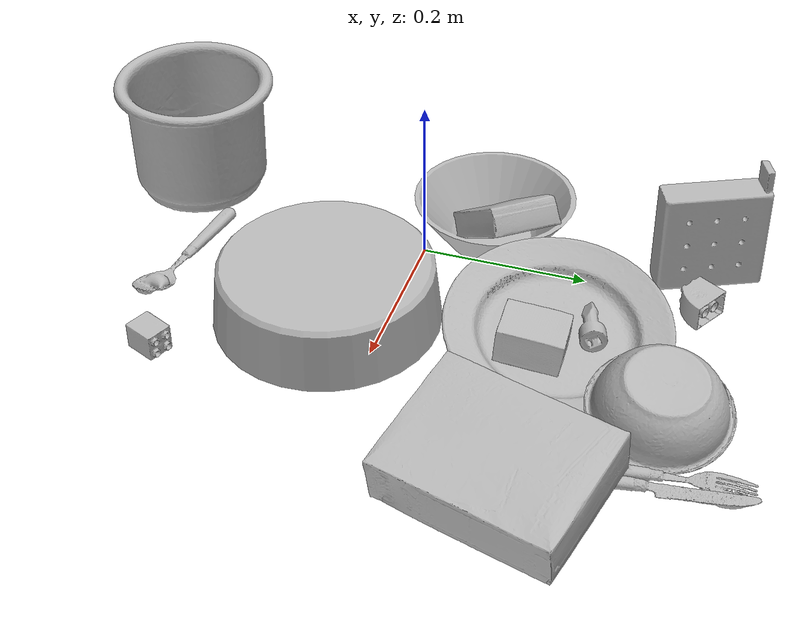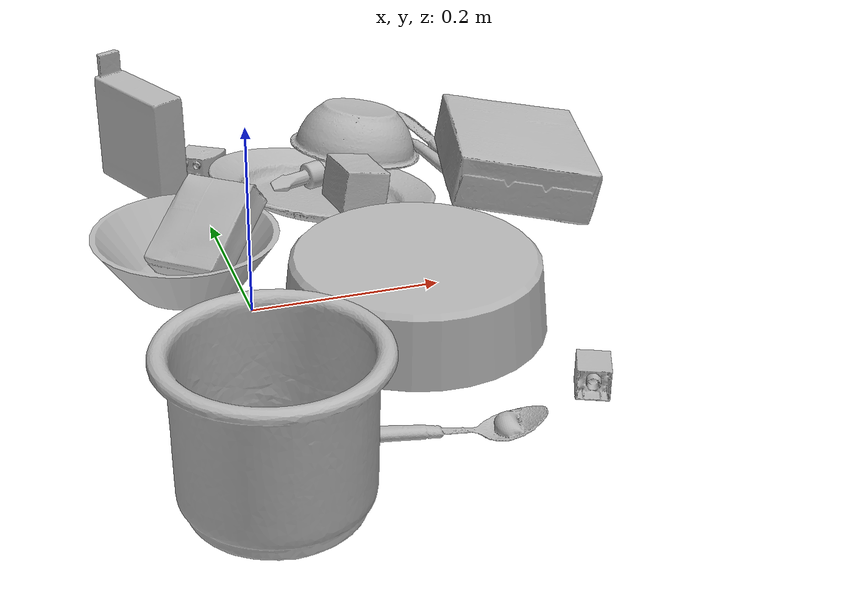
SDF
<sdf version="1.4">
  <world name="default">
    <light name="light1" type="point">
      <pose>0 0 1 0 0 0</pose>
      <diffuse>3 3 3 1</diffuse>
      <specular>3 3 3 1</specular>
    </light>
    <light name="light2" type="point">
      <pose>0 0.5 2 0 0 0</pose>
      <diffuse>1 1 1 1</diffuse>
      <specular>1 1 1 1</specular>
    </light>
    <light name="light3" type="point">
      <pose>0 0.5 2 0 0 0</pose>
      <diffuse>3 3 3 1</diffuse>
      <specular>3 3 3 1</specular>
    </light>
    <scene>
      <ambient>0.7 0.7 0.7</ambient>
    </scene>
    <model name="plate1">
      <link name="link_plate1">
        <collision name="default">
          <geometry>
            <mesh>
              <uri>model://pan_tefal/collision_meshes/collision.obj</uri>
              <scale>1.0 1.0 1.0</scale>
            </mesh>
          </geometry>
          <surface>
            <friction>
              <ode>
                <mu>0.5</mu>
                <mu2>0.5</mu2>
              </ode>
            </friction>
          <contact>
        <ode>
            <max_vel>0</max_vel>
            <min_depth>0.0001</min_depth>
            <kp>1e8</kp>
        </ode>
    </contact></surface>
        </collision>
        <visual name="default">
          <geometry>
            <mesh>
              <uri>model://pan_tefal/visual_meshes/visual.dae</uri>
              <scale>1.0 1.0 1.0</scale>
            </mesh>
          </geometry>
        </visual>
        <inertial>
          <mass>0.7050602436065674</mass>
          <pose>-0.00018002082651946694 3.279098018538207e-05 -0.008514933288097382 0.0008190340203057913 -0.0003301288692481796 -0.3318720847028622</pose>
          <inertia>
            <ixx>0.0048669963</ixx>
            <iyy>0.0048983735</iyy>
            <izz>0.008959204</izz>
            <ixy>0</ixy>
            <ixz>0</ixz>
            <iyz>0</iyz>
          </inertia>
        </inertial>
      </link>
      <pose>0.1508023589849472 -0.06905956566333771 0.03782205283641815 3.1415926468306776 8.100537303439088e-09 1.0113566503248026</pose>
    </model>
    <model name="plate2">
      <link name="link_plate2">
        <collision name="default">
          <geometry>
            <mesh>
              <uri>model://plate/collision_meshes/collision.obj</uri>
              <scale>1.0 1.0 1.0</scale>
            </mesh>
          </geometry>
          <surface>
            <friction>
              <ode>
                <mu>0.5</mu>
                <mu2>0.5</mu2>
              </ode>
            </friction>
          <contact>
        <ode>
            <max_vel>0</max_vel>
            <min_depth>0.0001</min_depth>
            <kp>1e8</kp>
        </ode>
    </contact></surface>
        </collision>
        <visual name="default">
          <geometry>
            <mesh>
              <uri>model://plate/visual_meshes/visual.dae</uri>
              <scale>1.0 1.0 1.0</scale>
            </mesh>
          </geometry>
        </visual>
        <inertial>
          <mass>0.2442774623632431</mass>
          <pose>-0.0006044568726792932 0.0002782584633678198 -0.0010561984963715076 0.0022187778178748897 -0.0032254919076997847 0.45261061169843664</pose>
          <inertia>
            <ixx>0.0011427345</ixx>
            <iyy>0.001131805</iyy>
            <izz>0.002235018</izz>
            <ixy>0</ixy>
            <ixz>0</ixz>
            <iyz>0</iyz>
          </inertia>
        </inertial>
      </link>
      <pose>0.12987135350704193 0.19729261100292206 0.028593316674232483 0.1917763437130049 -0.00380566576107094 2.1307648126955523</pose>
    </model>
    <model name="bowl1">
      <link name="link_bowl1">
        <collision name="default">
          <geometry>
            <mesh>
              <uri>model://bowl_a/collision_meshes/collision.obj</uri>
              <scale>1.0 1.0 1.0</scale>
            </mesh>
          </geometry>
          <surface>
            <friction>
              <ode>
                <mu>0.5</mu>
                <mu2>0.5</mu2>
              </ode>
            </friction>
          <contact>
        <ode>
            <max_vel>0</max_vel>
            <min_depth>0.0001</min_depth>
            <kp>1e8</kp>
        </ode>
    </contact></surface>
        </collision>
        <visual name="default">
          <geometry>
            <mesh>
              <uri>model://bowl_a/visual_meshes/visual.dae</uri>
              <scale>1.0 1.0 1.0</scale>
            </mesh>
          </geometry>
        </visual>
        <inertial>
          <mass>0.4025156497955322</mass>
          <pose>0.00027867371682077646 4.731032458948903e-05 -0.0013765298062935472 -0.00098054011869292 -0.0010938175729232503 -0.19123339485915475</pose>
          <inertia>
            <ixx>0.0011459808</ixx>
            <iyy>0.0011530165</iyy>
            <izz>0.0020381706</izz>
            <ixy>0</ixy>
            <ixz>0</ixz>
            <iyz>0</iyz>
          </inertia>
        </inertial>
      </link>
      <pose>-0.05177561193704605 0.07293708622455597 0.03038310632109642 -3.939379057623907e-06 1.4351576092618536e-05 0.8004196292750932</pose>
    </model>
    <model name="bowl2">
      <link name="link_bowl2">
        <collision name="default">
          <geometry>
            <mesh>
              <uri>model://bowl/collision_meshes/collision.obj</uri>
              <scale>1.0 1.0 1.0</scale>
            </mesh>
          </geometry>
          <surface>
            <friction>
              <ode>
                <mu>0.5</mu>
                <mu2>0.5</mu2>
              </ode>
            </friction>
          <contact>
        <ode>
            <max_vel>0</max_vel>
            <min_depth>0.0001</min_depth>
            <kp>1e8</kp>
        </ode>
    </contact></surface>
        </collision>
        <visual name="default">
          <geometry>
            <mesh>
              <uri>model://bowl/visual_meshes/visual.dae</uri>
              <scale>1.0 1.0 1.0</scale>
            </mesh>
          </geometry>
        </visual>
        <inertial>
          <mass>0.04694162309169769</mass>
          <pose>0.00020445318659767509 -0.001030211104080081 -0.0008042642730288208 -0.01576400215318024 0.014546874726031786 0.7140460761636136</pose>
          <inertia>
            <ixx>0.0001078286</ixx>
            <iyy>0.000105419305</iyy>
            <izz>0.00018140484</izz>
            <ixy>0</ixy>
            <ixz>0</ixz>
            <iyz>0</iyz>
          </inertia>
        </inertial>
      </link>
      <pose>0.21385931968688965 0.3307722508907318 0.04167322814464569 -3.025566217668234 -0.1596007666304684 2.9959599246990027</pose>
    </model>
    <model name="silverware1">
      <link name="link_silverware1">
        <collision name="default">
          <geometry>
            <mesh>
              <uri>model://spoon/collision_meshes/collision.obj</uri>
              <scale>1.0 1.0 1.0</scale>
            </mesh>
          </geometry>
          <surface>
            <friction>
              <ode>
                <mu>0.5</mu>
                <mu2>0.5</mu2>
              </ode>
            </friction>
          <contact>
        <ode>
            <max_vel>0</max_vel>
            <min_depth>0.0001</min_depth>
            <kp>1e8</kp>
        </ode>
    </contact></surface>
        </collision>
        <visual name="default">
          <geometry>
            <mesh>
              <uri>model://spoon/visual_meshes/visual.dae</uri>
              <scale>1.0 1.0 1.0</scale>
            </mesh>
          </geometry>
        </visual>
        <inertial>
          <mass>0.03710600733757019</mass>
          <pose>-0.005526318680495024 -0.0016034168656915426 -0.0007271650829352438 0.03521602429168162 -0.03906583039209626 0.006150612964611125</pose>
          <inertia>
            <ixx>2.0638956e-06</ixx>
            <iyy>0.00014118708</iyy>
            <izz>0.00014220492</izz>
            <ixy>0</ixy>
            <ixz>0</ixz>
            <iyz>0</iyz>
          </inertia>
        </inertial>
      </link>
      <pose>0.10520392656326294 -0.26743000745773315 0.008385268040001392 0.006729665319695716 0.02689295323844102 -0.1815860819226589</pose>
    </model>
    <model name="box1">
      <link name="link_box1">
        <collision name="default">
          <geometry>
            <mesh>
              <uri>model://cracker_box/collision_meshes/collision.obj</uri>
              <scale>1.0 1.0 1.0</scale>
            </mesh>
          </geometry>
          <surface>
            <friction>
              <ode>
                <mu>0.5</mu>
                <mu2>0.5</mu2>
              </ode>
            </friction>
          <contact>
        <ode>
            <max_vel>0</max_vel>
            <min_depth>0.0001</min_depth>
            <kp>1e8</kp>
        </ode>
    </contact></surface>
        </collision>
        <visual name="default">
          <geometry>
            <mesh>
              <uri>model://cracker_box/visual_meshes/visual.dae</uri>
              <scale>1.0 1.0 1.0</scale>
            </mesh>
          </geometry>
        </visual>
        <inertial>
          <mass>2.252173662185669</mass>
          <pose>0.0009464137838222086 0.0002543425071053207 -0.0017029535956680775 -0.000316207513865998 -0.011106489600465836 0.0025467954670329632</pose>
          <inertia>
            <ixx>0.0057285246</ixx>
            <iyy>0.00945892</iyy>
            <izz>0.013498746</izz>
            <ixy>0</ixy>
            <ixz>0</ixz>
            <iyz>0</iyz>
          </inertia>
        </inertial>
      </link>
      <pose>0.3637746274471283 0.1936500370502472 0.041548918932676315 -2.978513403110778 0.021025376910134386 1.3208669745567758</pose>
    </model>
    <model name="box2">
      <link name="link_box2">
        <collision name="default">
          <geometry>
            <mesh>
              <uri>model://pudding_box/collision_meshes/collision.obj</uri>
              <scale>1.0 1.0 1.0</scale>
            </mesh>
          </geometry>
          <surface>
            <friction>
              <ode>
                <mu>0.5</mu>
                <mu2>0.5</mu2>
              </ode>
            </friction>
          <contact>
        <ode>
            <max_vel>0</max_vel>
            <min_depth>0.0001</min_depth>
            <kp>1e8</kp>
        </ode>
    </contact></surface>
        </collision>
        <visual name="default">
          <geometry>
            <mesh>
              <uri>model://pudding_box/visual_meshes/visual.dae</uri>
              <scale>1.0 1.0 1.0</scale>
            </mesh>
          </geometry>
        </visual>
        <inertial>
          <mass>0.38795164227485657</mass>
          <pose>0.0004894821904599667 0.0008067885646596551 -0.0005188827635720372 0.005213102258195884 -0.006603798723254801 0.020079825158131615</pose>
          <inertia>
            <ixx>0.00043855933</ixx>
            <iyy>0.00029506587</iyy>
            <izz>0.0006476475</izz>
            <ixy>0</ixy>
            <ixz>0</ixz>
            <iyz>0</iyz>
          </inertia>
        </inertial>
      </link>
      <pose>-0.026041928678750992 0.09358558803796768 0.051158539950847626 2.528511380276714 0.05940681070833325 2.322940660297445</pose>
    </model>
    <model name="cup1">
      <link name="link_cup1">
        <collision name="default">
          <geometry>
            <mesh>
              <uri>model://i_cups/collision_meshes/collision.obj</uri>
              <scale>2.0 2.0 2.0</scale>
            </mesh>
          </geometry>
          <surface>
            <friction>
              <ode>
                <mu>0.5</mu>
                <mu2>0.5</mu2>
              </ode>
            </friction>
          <contact>
        <ode>
            <max_vel>0</max_vel>
            <min_depth>0.0001</min_depth>
            <kp>1e8</kp>
        </ode>
    </contact></surface>
        </collision>
        <visual name="default">
          <geometry>
            <mesh>
              <uri>model://i_cups/visual_meshes/visual.dae</uri>
              <scale>2.0 2.0 2.0</scale>
            </mesh>
          </geometry>
        </visual>
        <inertial>
          <mass>0.8781275153160095</mass>
          <pose>0.00022480404004454613 0.0003359464171808213 -0.0017158013070002198 -0.028983801808433914 -0.03987279960401974 -0.34589629987983705</pose>
          <inertia>
            <ixx>0.004863122</ixx>
            <iyy>0.004905971</iyy>
            <izz>0.005435325</izz>
            <ixy>0</ixy>
            <ixz>0</ixz>
            <iyz>0</iyz>
          </inertia>
        </inertial>
      </link>
      <pose>-0.05526040866971016 -0.32053709030151367 0.07554963231086731 0.0019152564417661093 -0.006371255986116936 -1.5711244607384023</pose>
    </model>
    <model name="silverware2">
      <link name="link_silverware2">
        <collision name="default">
          <geometry>
            <mesh>
              <uri>model://fork/collision_meshes/collision.obj</uri>
              <scale>1.0 1.0 1.0</scale>
            </mesh>
          </geometry>
          <surface>
            <friction>
              <ode>
                <mu>0.5</mu>
                <mu2>0.5</mu2>
              </ode>
            </friction>
          <contact>
        <ode>
            <max_vel>0</max_vel>
            <min_depth>0.0001</min_depth>
            <kp>1e8</kp>
        </ode>
    </contact></surface>
        </collision>
        <visual name="default">
          <geometry>
            <mesh>
              <uri>model://fork/visual_meshes/visual.dae</uri>
              <scale>1.0 1.0 1.0</scale>
            </mesh>
          </geometry>
        </visual>
        <inertial>
          <mass>0.027322283014655113</mass>
          <pose>-0.02957003377377987 0.0004658822435885668 0.0003218860656488687 -0.013551502868568713 -0.01097783467120204 0.01445389601768567</pose>
          <inertia>
            <ixx>9.578007e-07</ixx>
            <iyy>7.133063e-05</iyy>
            <izz>7.175903e-05</izz>
            <ixy>0</ixy>
            <ixz>0</ixz>
            <iyz>0</iyz>
          </inertia>
        </inertial>
      </link>
      <pose>0.29389944672584534 0.3462623357772827 0.007455532439053059 -3.0663705828478935 0.002675590170963664 1.7032783077693245</pose>
    </model>
    <model name="silverware3">
      <link name="link_silverware3">
        <collision name="default">
          <geometry>
            <mesh>
              <uri>model://knife/collision_meshes/collision.obj</uri>
              <scale>1.0 1.0 1.0</scale>
            </mesh>
          </geometry>
          <surface>
            <friction>
              <ode>
                <mu>0.5</mu>
                <mu2>0.5</mu2>
              </ode>
            </friction>
          <contact>
        <ode>
            <max_vel>0</max_vel>
            <min_depth>0.0001</min_depth>
            <kp>1e8</kp>
        </ode>
    </contact></surface>
        </collision>
        <visual name="default">
          <geometry>
            <mesh>
              <uri>model://knife/visual_meshes/visual.dae</uri>
              <scale>1.0 1.0 1.0</scale>
            </mesh>
          </geometry>
        </visual>
        <inertial>
          <mass>0.036400385200977325</mass>
          <pose>-0.02378525584936142 0.0015275126788765192 5.0620175898075104e-05 0.07305876248658423 0.017248417790611748 -0.007409819472147862</pose>
          <inertia>
            <ixx>1.0331904e-06</ixx>
            <iyy>0.00013984439</iyy>
            <izz>0.00014017712</izz>
            <ixy>0</ixy>
            <ixz>0</ixz>
            <iyz>0</iyz>
          </inertia>
        </inertial>
      </link>
      <pose>0.3155743479728699 0.3428523540496826 0.007876850664615631 -0.004773618330488124 -0.013398307663119946 1.685290838965301</pose>
    </model>
    <model name="toy1">
      <link name="link_toy1">
        <collision name="default">
          <geometry>
            <mesh>
              <uri>model://d_lego_duplo/collision_meshes/collision.obj</uri>
              <scale>1.0 1.0 1.0</scale>
            </mesh>
          </geometry>
          <surface>
            <friction>
              <ode>
                <mu>0.5</mu>
                <mu2>0.5</mu2>
              </ode>
            </friction>
          <contact>
        <ode>
            <max_vel>0</max_vel>
            <min_depth>0.0001</min_depth>
            <kp>1e8</kp>
        </ode>
    </contact></surface>
        </collision>
        <visual name="default">
          <geometry>
            <mesh>
              <uri>model://d_lego_duplo/visual_meshes/visual.dae</uri>
              <scale>1.0 1.0 1.0</scale>
            </mesh>
          </geometry>
        </visual>
        <inertial>
          <mass>0.060466669499874115</mass>
          <pose>0.002830563113093376 0.00016366162162739784 0.0008589806384406984 0.08010949306805684 -0.3835523000845375 0.0010296676643477064</pose>
          <inertia>
            <ixx>1.1705457e-05</ixx>
            <iyy>1.6613216e-05</iyy>
            <izz>1.6021117e-05</izz>
            <ixy>0</ixy>
            <ixz>0</ixz>
            <iyz>0</iyz>
          </inertia>
        </inertial>
      </link>
      <pose>0.018273290246725082 0.3352543115615845 0.016380678862333298 -1.5707402317134354 -0.007988450051793716 2.6115262183990033</pose>
    </model>
    <model name="toy2">
      <link name="link_toy2">
        <collision name="default">
          <geometry>
            <mesh>
              <uri>model://b_lego_duplo/collision_meshes/collision.obj</uri>
              <scale>1.0 1.0 1.0</scale>
            </mesh>
          </geometry>
          <surface>
            <friction>
              <ode>
                <mu>0.5</mu>
                <mu2>0.5</mu2>
              </ode>
            </friction>
          <contact>
        <ode>
            <max_vel>0</max_vel>
            <min_depth>0.0001</min_depth>
            <kp>1e8</kp>
        </ode>
    </contact></surface>
        </collision>
        <visual name="default">
          <geometry>
            <mesh>
              <uri>model://b_lego_duplo/visual_meshes/visual.dae</uri>
              <scale>1.0 1.0 1.0</scale>
            </mesh>
          </geometry>
        </visual>
        <inertial>
          <mass>0.030077241361141205</mass>
          <pose>-0.00011053079651901498 -9.15232340048533e-06 0.0019294286612421274 -0.037494862621914114 -0.026354003688684128 0.4518993950044185</pose>
          <inertia>
            <ixx>6.155532e-06</ixx>
            <iyy>6.196912e-06</iyy>
            <izz>5.4843786e-06</izz>
            <ixy>0</ixy>
            <ixz>0</ixz>
            <iyz>0</iyz>
          </inertia>
        </inertial>
      </link>
      <pose>0.26704442501068115 -0.23701682686805725 0.01621655561029911 -1.5802375860357678 0.0003215860703281664 -0.4061056680981358</pose>
    </model>
    <model name="toy3">
      <link name="link_toy3">
        <collision name="default">
          <geometry>
            <mesh>
              <uri>model://nine_hole_peg_test/collision_meshes/collision.obj</uri>
              <scale>1.0 1.0 1.0</scale>
            </mesh>
          </geometry>
          <surface>
            <friction>
              <ode>
                <mu>0.5</mu>
                <mu2>0.5</mu2>
              </ode>
            </friction>
          <contact>
        <ode>
            <max_vel>0</max_vel>
            <min_depth>0.0001</min_depth>
            <kp>1e8</kp>
        </ode>
    </contact></surface>
        </collision>
        <visual name="default">
          <geometry>
            <mesh>
              <uri>model://nine_hole_peg_test/visual_meshes/visual.dae</uri>
              <scale>1.0 1.0 1.0</scale>
            </mesh>
          </geometry>
        </visual>
        <inertial>
          <mass>0.9411391019821167</mass>
          <pose>-0.0046173869632184505 -0.009647615253925323 2.646069333422929e-05 -0.0014666795036135398 0.0007194176186147546 -0.6342417663820423</pose>
          <inertia>
            <ixx>0.0014716258</ixx>
            <iyy>0.0013740414</iyy>
            <izz>0.0025787223</izz>
            <ixy>0</ixy>
            <ixz>0</ixz>
            <iyz>0</iyz>
          </inertia>
        </inertial>
      </link>
      <pose>-0.05474518984556198 0.3381440043449402 0.07401727885007858 1.558512485109398 -0.007629089473568737 2.000850642023978</pose>
    </model>
    <model name="toy4">
      <link name="link_toy4">
        <collision name="default">
          <geometry>
            <mesh>
              <uri>model://foam_brick/collision_meshes/collision.obj</uri>
              <scale>1.0 1.0 1.0</scale>
            </mesh>
          </geometry>
          <surface>
            <friction>
              <ode>
                <mu>0.5</mu>
                <mu2>0.5</mu2>
              </ode>
            </friction>
          <contact>
        <ode>
            <max_vel>0</max_vel>
            <min_depth>0.0001</min_depth>
            <kp>1e8</kp>
        </ode>
    </contact></surface>
        </collision>
        <visual name="default">
          <geometry>
            <mesh>
              <uri>model://foam_brick/visual_meshes/visual.dae</uri>
              <scale>1.0 1.0 1.0</scale>
            </mesh>
          </geometry>
        </visual>
        <inertial>
          <mass>0.1527709662914276</mass>
          <pose>-0.00025224717683158815 0.0003458428254816681 -0.00025321016437374055 -0.29402015796081304 0.017274438268763303 -0.0007449889855682301</pose>
          <inertia>
            <ixx>6.673321e-05</ixx>
            <iyy>0.00010654301</iyy>
            <izz>0.00010789704</izz>
            <ixy>0</ixy>
            <ixz>0</ixz>
            <iyz>0</iyz>
          </inertia>
        </inertial>
      </link>
      <pose>0.16419227421283722 0.1776694655418396 0.040675804018974304 -2.961011497791955 0.08915901604385151 1.6100442132166695</pose>
    </model>
    <model name="toy5">
      <link name="link_toy5">
        <collision name="default">
          <geometry>
            <mesh>
              <uri>model://e_toy_airplane/collision_meshes/collision.obj</uri>
              <scale>1.0 1.0 1.0</scale>
            </mesh>
          </geometry>
          <surface>
            <friction>
              <ode>
                <mu>0.5</mu>
                <mu2>0.5</mu2>
              </ode>
            </friction>
          <contact>
        <ode>
            <max_vel>0</max_vel>
            <min_depth>0.0001</min_depth>
            <kp>1e8</kp>
        </ode>
    </contact></surface>
        </collision>
        <visual name="default">
          <geometry>
            <mesh>
              <uri>model://e_toy_airplane/visual_meshes/visual.dae</uri>
              <scale>1.0 1.0 1.0</scale>
            </mesh>
          </geometry>
        </visual>
        <inertial>
          <mass>0.01976589486002922</mass>
          <pose>0.00011740453192032874 -2.2483010980067775e-05 -0.011187207885086536 0.005518504435964777 0.009228288570086122 0.15041432989491213</pose>
          <inertia>
            <ixx>6.0327766e-06</ixx>
            <iyy>5.971064e-06</iyy>
            <izz>1.813087e-06</izz>
            <ixy>0</ixy>
            <ixz>0</ixz>
            <iyz>0</iyz>
          </inertia>
        </inertial>
      </link>
      <pose>0.10873900353908539 0.23012399673461914 0.03122110478579998 -1.5804024885813663 0.7295494323691695 1.882389040637798</pose>
    </model>
  <physics type="ode">
      <max_contacts>50</max_contacts>
      <ode>
        <solver>
          <type>quick</type>
          <iters>75</iters>
        </solver>
        <constraints>
          <contact_max_correcting_vel>0</contact_max_correcting_vel>
          <contact_surface_layer>0</contact_surface_layer>
        </constraints>
      </ode>
    </physics></world>
</sdf>
